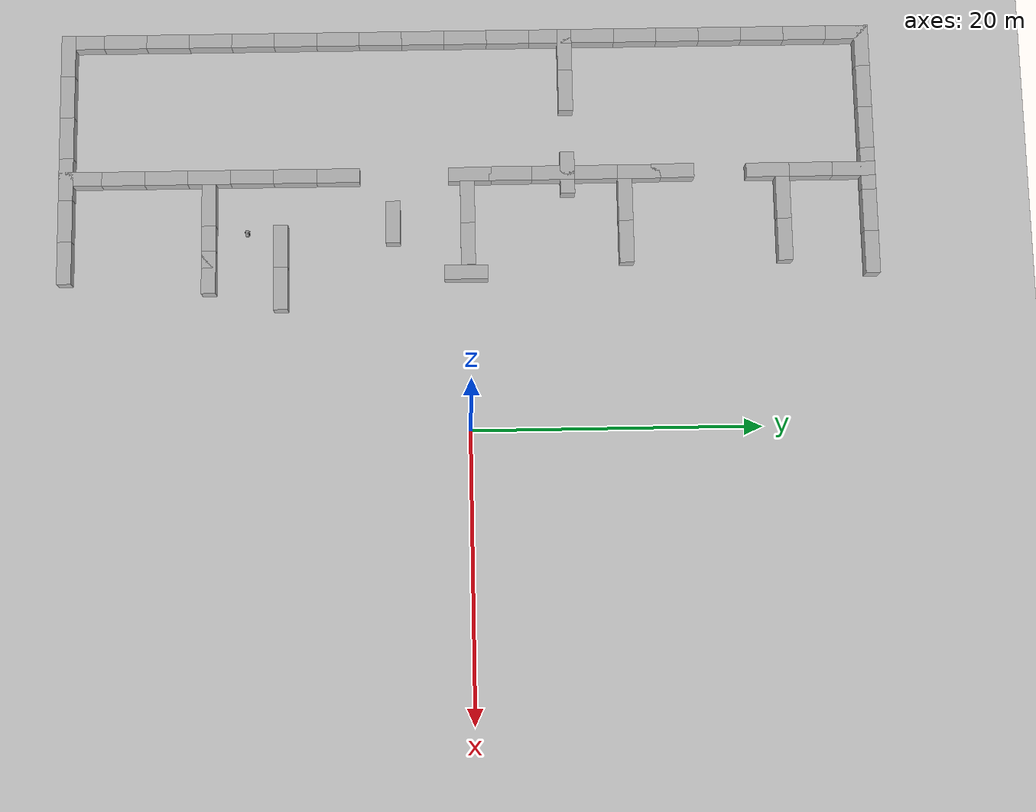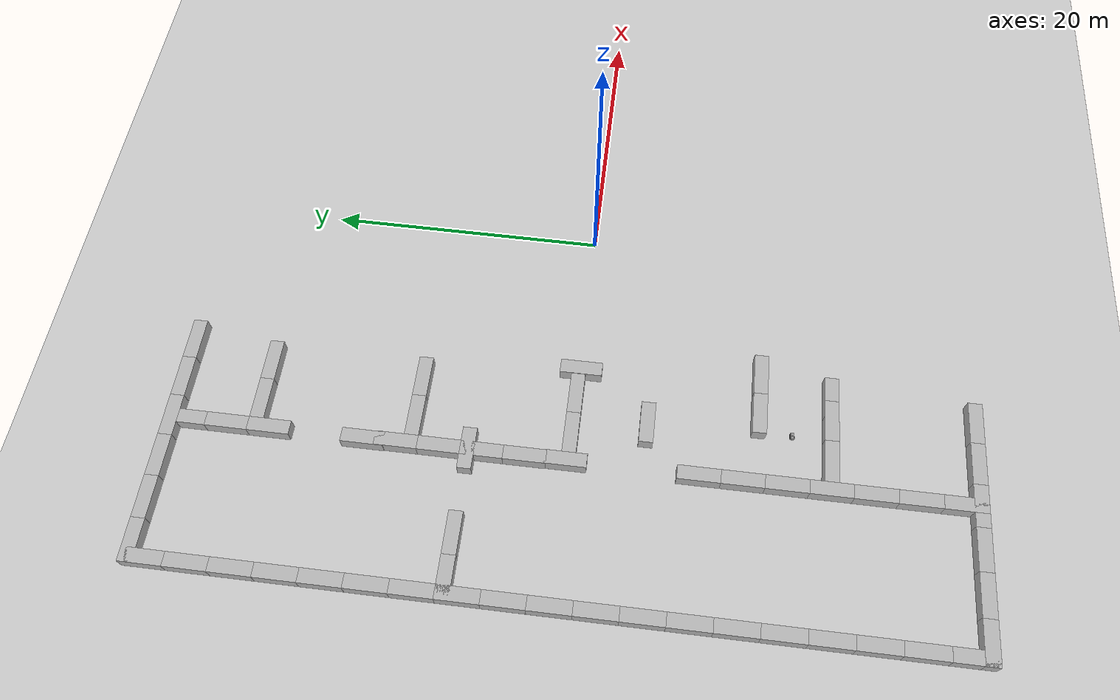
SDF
<sdf version="1.6">
 <world name="default">
  <model name="ground_plane">
   <static>1</static>
   <link name="link">
    <collision name="collision">
     <geometry><plane><normal>0 0 1</normal><size>100 100</size></plane></geometry>
     <surface>
      <contact><collide_bitmask>65535</collide_bitmask></contact>
      <friction><ode><mu>100</mu><mu2>50</mu2></ode></friction>
     </surface>
    </collision>
    <visual name="visual">
     <cast_shadows>0</cast_shadows>
     <geometry><plane><normal>0 0 1</normal><size>100 100</size></plane></geometry>
     <material>
      <script><uri>file://media/materials/scripts/gazebo.material</uri><name>Gazebo/Grey</name></script>
     </material>
    </visual>
   </link>
  </model>
  <model name="wall0">
   <static>1</static>
   <link name="chassis">
    <pose>0 0 1.5 0 -0 0</pose>
    <collision name="collision"><geometry><box><size>3 1 3</size></box></geometry></collision>
    <visual name="visual">
     <geometry><mesh><uri>model://brick_box_3x1x3/meshes/simple_box.dae</uri><scale>3 1 3</scale></mesh></geometry>
     <material>
      <script>
       <uri>model://brick_box_3x1x3/materials/scripts</uri>
       <uri>model://brick_box_3x1x3/materials/textures</uri>
       <name>BrickBox/Diffuse</name>
      </script>
     </material>
    </visual>
   </link>
   <pose>-27 -28 -2 0 -0 0</pose>
  </model>
  <model name="wall1">
   <static>1</static>
   <link name="chassis">
    <pose>0 0 1.5 0 -0 0</pose>
    <collision name="collision"><geometry><box><size>3 1 3</size></box></geometry></collision>
    <visual name="visual">
     <geometry><mesh><uri>model://brick_box_3x1x3/meshes/simple_box.dae</uri><scale>3 1 3</scale></mesh></geometry>
     <material>
      <script>
       <uri>model://brick_box_3x1x3/materials/scripts</uri>
       <uri>model://brick_box_3x1x3/materials/textures</uri>
       <name>BrickBox/Diffuse</name>
      </script>
     </material>
    </visual>
   </link>
   <pose>-27 28 -2 0 -0 0</pose>
  </model>
  <model name="wall2">
   <static>1</static>
   <link name="chassis">
    <pose>0 0 1.5 0 -0 0</pose>
    <collision name="collision"><geometry><box><size>3 1 3</size></box></geometry></collision>
    <visual name="visual">
     <geometry><mesh><uri>model://brick_box_3x1x3/meshes/simple_box.dae</uri><scale>3 1 3</scale></mesh></geometry>
     <material>
      <script>
       <uri>model://brick_box_3x1x3/materials/scripts</uri>
       <uri>model://brick_box_3x1x3/materials/textures</uri>
       <name>BrickBox/Diffuse</name>
      </script>
     </material>
    </visual>
   </link>
   <pose>-28 -27 -2 0 -0 1.5708</pose>
  </model>
  <model name="wall4">
   <static>1</static>
   <link name="chassis">
    <pose>0 0 1.5 0 -0 0</pose>
    <collision name="collision"><geometry><box><size>3 1 3</size></box></geometry></collision>
    <visual name="visual">
     <geometry><mesh><uri>model://brick_box_3x1x3/meshes/simple_box.dae</uri><scale>3 1 3</scale></mesh></geometry>
     <material>
      <script>
       <uri>model://brick_box_3x1x3/materials/scripts</uri>
       <uri>model://brick_box_3x1x3/materials/textures</uri>
       <name>BrickBox/Diffuse</name>
      </script>
     </material>
    </visual>
   </link>
   <pose>-24 -28 -2 0 -0 0</pose>
  </model>
  <model name="wall5">
   <static>1</static>
   <link name="chassis">
    <pose>0 0 1.5 0 -0 0</pose>
    <collision name="collision"><geometry><box><size>3 1 3</size></box></geometry></collision>
    <visual name="visual">
     <geometry><mesh><uri>model://brick_box_3x1x3/meshes/simple_box.dae</uri><scale>3 1 3</scale></mesh></geometry>
     <material>
      <script>
       <uri>model://brick_box_3x1x3/materials/scripts</uri>
       <uri>model://brick_box_3x1x3/materials/textures</uri>
       <name>BrickBox/Diffuse</name>
      </script>
     </material>
    </visual>
   </link>
   <pose>-24 28 -2 0 -0 0</pose>
  </model>
  <model name="wall6">
   <static>1</static>
   <link name="chassis">
    <pose>0 0 1.5 0 -0 0</pose>
    <collision name="collision"><geometry><box><size>3 1 3</size></box></geometry></collision>
    <visual name="visual">
     <geometry><mesh><uri>model://brick_box_3x1x3/meshes/simple_box.dae</uri><scale>3 1 3</scale></mesh></geometry>
     <material>
      <script>
       <uri>model://brick_box_3x1x3/materials/scripts</uri>
       <uri>model://brick_box_3x1x3/materials/textures</uri>
       <name>BrickBox/Diffuse</name>
      </script>
     </material>
    </visual>
   </link>
   <pose>-28 -24 -2 0 -0 1.5708</pose>
  </model>
  <model name="wall8">
   <static>1</static>
   <link name="chassis">
    <pose>0 0 1.5 0 -0 0</pose>
    <collision name="collision"><geometry><box><size>3 1 3</size></box></geometry></collision>
    <visual name="visual">
     <geometry><mesh><uri>model://brick_box_3x1x3/meshes/simple_box.dae</uri><scale>3 1 3</scale></mesh></geometry>
     <material>
      <script>
       <uri>model://brick_box_3x1x3/materials/scripts</uri>
       <uri>model://brick_box_3x1x3/materials/textures</uri>
       <name>BrickBox/Diffuse</name>
      </script>
     </material>
    </visual>
   </link>
   <pose>-21 -28 -2 0 -0 0</pose>
  </model>
  <model name="wall9">
   <static>1</static>
   <link name="chassis">
    <pose>0 0 1.5 0 -0 0</pose>
    <collision name="collision"><geometry><box><size>3 1 3</size></box></geometry></collision>
    <visual name="visual">
     <geometry><mesh><uri>model://brick_box_3x1x3/meshes/simple_box.dae</uri><scale>3 1 3</scale></mesh></geometry>
     <material>
      <script>
       <uri>model://brick_box_3x1x3/materials/scripts</uri>
       <uri>model://brick_box_3x1x3/materials/textures</uri>
       <name>BrickBox/Diffuse</name>
      </script>
     </material>
    </visual>
   </link>
   <pose>-21 28 -2 0 -0 0</pose>
  </model>
  <model name="wall10">
   <static>1</static>
   <link name="chassis">
    <pose>0 0 1.5 0 -0 0</pose>
    <collision name="collision"><geometry><box><size>3 1 3</size></box></geometry></collision>
    <visual name="visual">
     <geometry><mesh><uri>model://brick_box_3x1x3/meshes/simple_box.dae</uri><scale>3 1 3</scale></mesh></geometry>
     <material>
      <script>
       <uri>model://brick_box_3x1x3/materials/scripts</uri>
       <uri>model://brick_box_3x1x3/materials/textures</uri>
       <name>BrickBox/Diffuse</name>
      </script>
     </material>
    </visual>
   </link>
   <pose>-28 -21 -2 0 -0 1.5708</pose>
  </model>
  <model name="wall12">
   <static>1</static>
   <link name="chassis">
    <pose>0 0 1.5 0 -0 0</pose>
    <collision name="collision"><geometry><box><size>3 1 3</size></box></geometry></collision>
    <visual name="visual">
     <geometry><mesh><uri>model://brick_box_3x1x3/meshes/simple_box.dae</uri><scale>3 1 3</scale></mesh></geometry>
     <material>
      <script>
       <uri>model://brick_box_3x1x3/materials/scripts</uri>
       <uri>model://brick_box_3x1x3/materials/textures</uri>
       <name>BrickBox/Diffuse</name>
      </script>
     </material>
    </visual>
   </link>
   <pose>-18 -28 -2 0 -0 0</pose>
  </model>
  <model name="wall13">
   <static>1</static>
   <link name="chassis">
    <pose>0 0 1.5 0 -0 0</pose>
    <collision name="collision"><geometry><box><size>3 1 3</size></box></geometry></collision>
    <visual name="visual">
     <geometry><mesh><uri>model://brick_box_3x1x3/meshes/simple_box.dae</uri><scale>3 1 3</scale></mesh></geometry>
     <material>
      <script>
       <uri>model://brick_box_3x1x3/materials/scripts</uri>
       <uri>model://brick_box_3x1x3/materials/textures</uri>
       <name>BrickBox/Diffuse</name>
      </script>
     </material>
    </visual>
   </link>
   <pose>-18 28 -2 0 -0 0</pose>
  </model>
  <model name="wall14">
   <static>1</static>
   <link name="chassis">
    <pose>0 0 1.5 0 -0 0</pose>
    <collision name="collision"><geometry><box><size>3 1 3</size></box></geometry></collision>
    <visual name="visual">
     <geometry><mesh><uri>model://brick_box_3x1x3/meshes/simple_box.dae</uri><scale>3 1 3</scale></mesh></geometry>
     <material>
      <script>
       <uri>model://brick_box_3x1x3/materials/scripts</uri>
       <uri>model://brick_box_3x1x3/materials/textures</uri>
       <name>BrickBox/Diffuse</name>
      </script>
     </material>
    </visual>
   </link>
   <pose>-28 -18 -2 0 -0 1.5708</pose>
  </model>
  <model name="wall16">
   <static>1</static>
   <link name="chassis">
    <pose>0 0 1.5 0 -0 0</pose>
    <collision name="collision"><geometry><box><size>3 1 3</size></box></geometry></collision>
    <visual name="visual">
     <geometry><mesh><uri>model://brick_box_3x1x3/meshes/simple_box.dae</uri><scale>3 1 3</scale></mesh></geometry>
     <material>
      <script>
       <uri>model://brick_box_3x1x3/materials/scripts</uri>
       <uri>model://brick_box_3x1x3/materials/textures</uri>
       <name>BrickBox/Diffuse</name>
      </script>
     </material>
    </visual>
   </link>
   <pose>-15 -28 -2 0 -0 0</pose>
  </model>
  <model name="wall17">
   <static>1</static>
   <link name="chassis">
    <pose>0 0 1.5 0 -0 0</pose>
    <collision name="collision"><geometry><box><size>3 1 3</size></box></geometry></collision>
    <visual name="visual">
     <geometry><mesh><uri>model://brick_box_3x1x3/meshes/simple_box.dae</uri><scale>3 1 3</scale></mesh></geometry>
     <material>
      <script>
       <uri>model://brick_box_3x1x3/materials/scripts</uri>
       <uri>model://brick_box_3x1x3/materials/textures</uri>
       <name>BrickBox/Diffuse</name>
      </script>
     </material>
    </visual>
   </link>
   <pose>-15 28 -2 0 -0 0</pose>
  </model>
  <model name="wall18">
   <static>1</static>
   <link name="chassis">
    <pose>0 0 1.5 0 -0 0</pose>
    <collision name="collision"><geometry><box><size>3 1 3</size></box></geometry></collision>
    <visual name="visual">
     <geometry><mesh><uri>model://brick_box_3x1x3/meshes/simple_box.dae</uri><scale>3 1 3</scale></mesh></geometry>
     <material>
      <script>
       <uri>model://brick_box_3x1x3/materials/scripts</uri>
       <uri>model://brick_box_3x1x3/materials/textures</uri>
       <name>BrickBox/Diffuse</name>
      </script>
     </material>
    </visual>
   </link>
   <pose>-28 -15 -2 0 -0 1.5708</pose>
  </model>
  <model name="wall20">
   <static>1</static>
   <link name="chassis">
    <pose>0 0 1.5 0 -0 0</pose>
    <collision name="collision"><geometry><box><size>3 1 3</size></box></geometry></collision>
    <visual name="visual">
     <geometry><mesh><uri>model://brick_box_3x1x3/meshes/simple_box.dae</uri><scale>3 1 3</scale></mesh></geometry>
     <material>
      <script>
       <uri>model://brick_box_3x1x3/materials/scripts</uri>
       <uri>model://brick_box_3x1x3/materials/textures</uri>
       <name>BrickBox/Diffuse</name>
      </script>
     </material>
    </visual>
   </link>
   <pose>-12 -28 -2 0 -0 0</pose>
  </model>
  <model name="wall21">
   <static>1</static>
   <link name="chassis">
    <pose>0 0 1.5 0 -0 0</pose>
    <collision name="collision"><geometry><box><size>3 1 3</size></box></geometry></collision>
    <visual name="visual">
     <geometry><mesh><uri>model://brick_box_3x1x3/meshes/simple_box.dae</uri><scale>3 1 3</scale></mesh></geometry>
     <material>
      <script>
       <uri>model://brick_box_3x1x3/materials/scripts</uri>
       <uri>model://brick_box_3x1x3/materials/textures</uri>
       <name>BrickBox/Diffuse</name>
      </script>
     </material>
    </visual>
   </link>
   <pose>-12 28 -2 0 -0 0</pose>
  </model>
  <model name="wall22">
   <static>1</static>
   <link name="chassis">
    <pose>0 0 1.5 0 -0 0</pose>
    <collision name="collision"><geometry><box><size>3 1 3</size></box></geometry></collision>
    <visual name="visual">
     <geometry><mesh><uri>model://brick_box_3x1x3/meshes/simple_box.dae</uri><scale>3 1 3</scale></mesh></geometry>
     <material>
      <script>
       <uri>model://brick_box_3x1x3/materials/scripts</uri>
       <uri>model://brick_box_3x1x3/materials/textures</uri>
       <name>BrickBox/Diffuse</name>
      </script>
     </material>
    </visual>
   </link>
   <pose>-28 -12 -2 0 -0 1.5708</pose>
  </model>
  <model name="wall26">
   <static>1</static>
   <link name="chassis">
    <pose>0 0 1.5 0 -0 0</pose>
    <collision name="collision"><geometry><box><size>3 1 3</size></box></geometry></collision>
    <visual name="visual">
     <geometry><mesh><uri>model://brick_box_3x1x3/meshes/simple_box.dae</uri><scale>3 1 3</scale></mesh></geometry>
     <material>
      <script>
       <uri>model://brick_box_3x1x3/materials/scripts</uri>
       <uri>model://brick_box_3x1x3/materials/textures</uri>
       <name>BrickBox/Diffuse</name>
      </script>
     </material>
    </visual>
   </link>
   <pose>-28 -9 -2 0 -0 1.5708</pose>
  </model>
  <model name="wall30">
   <static>1</static>
   <link name="chassis">
    <pose>0 0 1.5 0 -0 0</pose>
    <collision name="collision"><geometry><box><size>3 1 3</size></box></geometry></collision>
    <visual name="visual">
     <geometry><mesh><uri>model://brick_box_3x1x3/meshes/simple_box.dae</uri><scale>3 1 3</scale></mesh></geometry>
     <material>
      <script>
       <uri>model://brick_box_3x1x3/materials/scripts</uri>
       <uri>model://brick_box_3x1x3/materials/textures</uri>
       <name>BrickBox/Diffuse</name>
      </script>
     </material>
    </visual>
   </link>
   <pose>-28 -6 -2 0 -0 1.5708</pose>
  </model>
  <model name="wall34">
   <static>1</static>
   <link name="chassis">
    <pose>0 0 1.5 0 -0 0</pose>
    <collision name="collision"><geometry><box><size>3 1 3</size></box></geometry></collision>
    <visual name="visual">
     <geometry><mesh><uri>model://brick_box_3x1x3/meshes/simple_box.dae</uri><scale>3 1 3</scale></mesh></geometry>
     <material>
      <script>
       <uri>model://brick_box_3x1x3/materials/scripts</uri>
       <uri>model://brick_box_3x1x3/materials/textures</uri>
       <name>BrickBox/Diffuse</name>
      </script>
     </material>
    </visual>
   </link>
   <pose>-28 -3 -2 0 -0 1.5708</pose>
  </model>
  <model name="wall38">
   <static>1</static>
   <link name="chassis">
    <pose>0 0 1.5 0 -0 0</pose>
    <collision name="collision"><geometry><box><size>3 1 3</size></box></geometry></collision>
    <visual name="visual">
     <geometry><mesh><uri>model://brick_box_3x1x3/meshes/simple_box.dae</uri><scale>3 1 3</scale></mesh></geometry>
     <material>
      <script>
       <uri>model://brick_box_3x1x3/materials/scripts</uri>
       <uri>model://brick_box_3x1x3/materials/textures</uri>
       <name>BrickBox/Diffuse</name>
      </script>
     </material>
    </visual>
   </link>
   <pose>-28 0 -2 0 -0 1.5708</pose>
  </model>
  <model name="wall42">
   <static>1</static>
   <link name="chassis">
    <pose>0 0 1.5 0 -0 0</pose>
    <collision name="collision"><geometry><box><size>3 1 3</size></box></geometry></collision>
    <visual name="visual">
     <geometry><mesh><uri>model://brick_box_3x1x3/meshes/simple_box.dae</uri><scale>3 1 3</scale></mesh></geometry>
     <material>
      <script>
       <uri>model://brick_box_3x1x3/materials/scripts</uri>
       <uri>model://brick_box_3x1x3/materials/textures</uri>
       <name>BrickBox/Diffuse</name>
      </script>
     </material>
    </visual>
   </link>
   <pose>-28 3 -2 0 -0 1.5708</pose>
  </model>
  <model name="wall46">
   <static>1</static>
   <link name="chassis">
    <pose>0 0 1.5 0 -0 0</pose>
    <collision name="collision"><geometry><box><size>3 1 3</size></box></geometry></collision>
    <visual name="visual">
     <geometry><mesh><uri>model://brick_box_3x1x3/meshes/simple_box.dae</uri><scale>3 1 3</scale></mesh></geometry>
     <material>
      <script>
       <uri>model://brick_box_3x1x3/materials/scripts</uri>
       <uri>model://brick_box_3x1x3/materials/textures</uri>
       <name>BrickBox/Diffuse</name>
      </script>
     </material>
    </visual>
   </link>
   <pose>-28 6 -2 0 -0 1.5708</pose>
  </model>
  <model name="wall50">
   <static>1</static>
   <link name="chassis">
    <pose>0 0 1.5 0 -0 0</pose>
    <collision name="collision"><geometry><box><size>3 1 3</size></box></geometry></collision>
    <visual name="visual">
     <geometry><mesh><uri>model://brick_box_3x1x3/meshes/simple_box.dae</uri><scale>3 1 3</scale></mesh></geometry>
     <material>
      <script>
       <uri>model://brick_box_3x1x3/materials/scripts</uri>
       <uri>model://brick_box_3x1x3/materials/textures</uri>
       <name>BrickBox/Diffuse</name>
      </script>
     </material>
    </visual>
   </link>
   <pose>-28 9 -2 0 -0 1.5708</pose>
  </model>
  <model name="wall54">
   <static>1</static>
   <link name="chassis">
    <pose>0 0 1.5 0 -0 0</pose>
    <collision name="collision"><geometry><box><size>3 1 3</size></box></geometry></collision>
    <visual name="visual">
     <geometry><mesh><uri>model://brick_box_3x1x3/meshes/simple_box.dae</uri><scale>3 1 3</scale></mesh></geometry>
     <material>
      <script>
       <uri>model://brick_box_3x1x3/materials/scripts</uri>
       <uri>model://brick_box_3x1x3/materials/textures</uri>
       <name>BrickBox/Diffuse</name>
      </script>
     </material>
    </visual>
   </link>
   <pose>-28 12 -2 0 -0 1.5708</pose>
  </model>
  <model name="wall58">
   <static>1</static>
   <link name="chassis">
    <pose>0 0 1.5 0 -0 0</pose>
    <collision name="collision"><geometry><box><size>3 1 3</size></box></geometry></collision>
    <visual name="visual">
     <geometry><mesh><uri>model://brick_box_3x1x3/meshes/simple_box.dae</uri><scale>3 1 3</scale></mesh></geometry>
     <material>
      <script>
       <uri>model://brick_box_3x1x3/materials/scripts</uri>
       <uri>model://brick_box_3x1x3/materials/textures</uri>
       <name>BrickBox/Diffuse</name>
      </script>
     </material>
    </visual>
   </link>
   <pose>-28 15 -2 0 -0 1.5708</pose>
  </model>
  <model name="wall62">
   <static>1</static>
   <link name="chassis">
    <pose>0 0 1.5 0 -0 0</pose>
    <collision name="collision"><geometry><box><size>3 1 3</size></box></geometry></collision>
    <visual name="visual">
     <geometry><mesh><uri>model://brick_box_3x1x3/meshes/simple_box.dae</uri><scale>3 1 3</scale></mesh></geometry>
     <material>
      <script>
       <uri>model://brick_box_3x1x3/materials/scripts</uri>
       <uri>model://brick_box_3x1x3/materials/textures</uri>
       <name>BrickBox/Diffuse</name>
      </script>
     </material>
    </visual>
   </link>
   <pose>-28 18 -2 0 -0 1.5708</pose>
  </model>
  <model name="wall66">
   <static>1</static>
   <link name="chassis">
    <pose>0 0 1.5 0 -0 0</pose>
    <collision name="collision"><geometry><box><size>3 1 3</size></box></geometry></collision>
    <visual name="visual">
     <geometry><mesh><uri>model://brick_box_3x1x3/meshes/simple_box.dae</uri><scale>3 1 3</scale></mesh></geometry>
     <material>
      <script>
       <uri>model://brick_box_3x1x3/materials/scripts</uri>
       <uri>model://brick_box_3x1x3/materials/textures</uri>
       <name>BrickBox/Diffuse</name>
      </script>
     </material>
    </visual>
   </link>
   <pose>-28 21 -2 0 -0 1.5708</pose>
  </model>
  <model name="wall70">
   <static>1</static>
   <link name="chassis">
    <pose>0 0 1.5 0 -0 0</pose>
    <collision name="collision"><geometry><box><size>3 1 3</size></box></geometry></collision>
    <visual name="visual">
     <geometry><mesh><uri>model://brick_box_3x1x3/meshes/simple_box.dae</uri><scale>3 1 3</scale></mesh></geometry>
     <material>
      <script>
       <uri>model://brick_box_3x1x3/materials/scripts</uri>
       <uri>model://brick_box_3x1x3/materials/textures</uri>
       <name>BrickBox/Diffuse</name>
      </script>
     </material>
    </visual>
   </link>
   <pose>-28 24 -2 0 -0 1.5708</pose>
  </model>
  <model name="wall74">
   <static>1</static>
   <link name="chassis">
    <pose>0 0 1.5 0 -0 0</pose>
    <collision name="collision"><geometry><box><size>3 1 3</size></box></geometry></collision>
    <visual name="visual">
     <geometry><mesh><uri>model://brick_box_3x1x3/meshes/simple_box.dae</uri><scale>3 1 3</scale></mesh></geometry>
     <material>
      <script>
       <uri>model://brick_box_3x1x3/materials/scripts</uri>
       <uri>model://brick_box_3x1x3/materials/textures</uri>
       <name>BrickBox/Diffuse</name>
      </script>
     </material>
    </visual>
   </link>
   <pose>-28 27 -2 0 -0 1.5708</pose>
  </model>
  <model name="wall76">
   <static>1</static>
   <link name="chassis">
    <pose>0 0 1.5 0 -0 0</pose>
    <collision name="collision"><geometry><box><size>3 1 3</size></box></geometry></collision>
    <visual name="visual">
     <geometry><mesh><uri>model://brick_box_3x1x3/meshes/simple_box.dae</uri><scale>3 1 3</scale></mesh></geometry>
     <material>
      <script>
       <uri>model://brick_box_3x1x3/materials/scripts</uri>
       <uri>model://brick_box_3x1x3/materials/textures</uri>
       <name>BrickBox/Diffuse</name>
      </script>
     </material>
    </visual>
   </link>
   <pose>-18 -27 -2 0 -0 1.5708</pose>
  </model>
  <model name="wall77">
   <static>1</static>
   <link name="chassis">
    <pose>0 0 1.5 0 -0 0</pose>
    <collision name="collision"><geometry><box><size>3 1 3</size></box></geometry></collision>
    <visual name="visual">
     <geometry><mesh><uri>model://brick_box_3x1x3/meshes/simple_box.dae</uri><scale>3 1 3</scale></mesh></geometry>
     <material>
      <script>
       <uri>model://brick_box_3x1x3/materials/scripts</uri>
       <uri>model://brick_box_3x1x3/materials/textures</uri>
       <name>BrickBox/Diffuse</name>
      </script>
     </material>
    </visual>
   </link>
   <pose>-18 -24 -2 0 -0 1.5708</pose>
  </model>
  <model name="wall78">
   <static>1</static>
   <link name="chassis">
    <pose>0 0 1.5 0 -0 0</pose>
    <collision name="collision"><geometry><box><size>3 1 3</size></box></geometry></collision>
    <visual name="visual">
     <geometry><mesh><uri>model://brick_box_3x1x3/meshes/simple_box.dae</uri><scale>3 1 3</scale></mesh></geometry>
     <material>
      <script>
       <uri>model://brick_box_3x1x3/materials/scripts</uri>
       <uri>model://brick_box_3x1x3/materials/textures</uri>
       <name>BrickBox/Diffuse</name>
      </script>
     </material>
    </visual>
   </link>
   <pose>-18 -21 -2 0 -0 1.5708</pose>
  </model>
  <model name="wall79">
   <static>1</static>
   <link name="chassis">
    <pose>0 0 1.5 0 -0 0</pose>
    <collision name="collision"><geometry><box><size>3 1 3</size></box></geometry></collision>
    <visual name="visual">
     <geometry><mesh><uri>model://brick_box_3x1x3/meshes/simple_box.dae</uri><scale>3 1 3</scale></mesh></geometry>
     <material>
      <script>
       <uri>model://brick_box_3x1x3/materials/scripts</uri>
       <uri>model://brick_box_3x1x3/materials/textures</uri>
       <name>BrickBox/Diffuse</name>
      </script>
     </material>
    </visual>
   </link>
   <pose>-18 -18 -2 0 -0 1.5708</pose>
  </model>
  <model name="wall80">
   <static>1</static>
   <link name="chassis">
    <pose>0 0 1.5 0 -0 0</pose>
    <collision name="collision"><geometry><box><size>3 1 3</size></box></geometry></collision>
    <visual name="visual">
     <geometry><mesh><uri>model://brick_box_3x1x3/meshes/simple_box.dae</uri><scale>3 1 3</scale></mesh></geometry>
     <material>
      <script>
       <uri>model://brick_box_3x1x3/materials/scripts</uri>
       <uri>model://brick_box_3x1x3/materials/textures</uri>
       <name>BrickBox/Diffuse</name>
      </script>
     </material>
    </visual>
   </link>
   <pose>-18 -15 -2 0 -0 1.5708</pose>
  </model>
  <model name="wall81">
   <static>1</static>
   <link name="chassis">
    <pose>0 0 1.5 0 -0 0</pose>
    <collision name="collision"><geometry><box><size>3 1 3</size></box></geometry></collision>
    <visual name="visual">
     <geometry><mesh><uri>model://brick_box_3x1x3/meshes/simple_box.dae</uri><scale>3 1 3</scale></mesh></geometry>
     <material>
      <script>
       <uri>model://brick_box_3x1x3/materials/scripts</uri>
       <uri>model://brick_box_3x1x3/materials/textures</uri>
       <name>BrickBox/Diffuse</name>
      </script>
     </material>
    </visual>
   </link>
   <pose>-18 -12 -2 0 -0 1.5708</pose>
  </model>
  <model name="wall82">
   <static>1</static>
   <link name="chassis">
    <pose>0 0 1.5 0 -0 0</pose>
    <collision name="collision"><geometry><box><size>3 1 3</size></box></geometry></collision>
    <visual name="visual">
     <geometry><mesh><uri>model://brick_box_3x1x3/meshes/simple_box.dae</uri><scale>3 1 3</scale></mesh></geometry>
     <material>
      <script>
       <uri>model://brick_box_3x1x3/materials/scripts</uri>
       <uri>model://brick_box_3x1x3/materials/textures</uri>
       <name>BrickBox/Diffuse</name>
      </script>
     </material>
    </visual>
   </link>
   <pose>-18 -9 -2 0 -0 1.5708</pose>
  </model>
  <model name="wall83">
   <static>1</static>
   <link name="chassis">
    <pose>0 0 1.5 0 -0 0</pose>
    <collision name="collision"><geometry><box><size>3 1 3</size></box></geometry></collision>
    <visual name="visual">
     <geometry><mesh><uri>model://brick_box_3x1x3/meshes/simple_box.dae</uri><scale>3 1 3</scale></mesh></geometry>
     <material>
      <script>
       <uri>model://brick_box_3x1x3/materials/scripts</uri>
       <uri>model://brick_box_3x1x3/materials/textures</uri>
       <name>BrickBox/Diffuse</name>
      </script>
     </material>
    </visual>
   </link>
   <pose>-10.9743 -0.151735 -2 0 -0 1.5708</pose>
  </model>
  <model name="wall84">
   <static>1</static>
   <link name="chassis">
    <pose>0 0 1.5 0 -0 0</pose>
    <collision name="collision"><geometry><box><size>3 1 3</size></box></geometry></collision>
    <visual name="visual">
     <geometry><mesh><uri>model://brick_box_3x1x3/meshes/simple_box.dae</uri><scale>3 1 3</scale></mesh></geometry>
     <material>
      <script>
       <uri>model://brick_box_3x1x3/materials/scripts</uri>
       <uri>model://brick_box_3x1x3/materials/textures</uri>
       <name>BrickBox/Diffuse</name>
      </script>
     </material>
    </visual>
   </link>
   <pose>-17.9735 0.185123 -2 0 -0 1.5708</pose>
  </model>
  <model name="wall85">
   <static>1</static>
   <link name="chassis">
    <pose>0 0 1.5 0 -0 0</pose>
    <collision name="collision"><geometry><box><size>3 1 3</size></box></geometry></collision>
    <visual name="visual">
     <geometry><mesh><uri>model://brick_box_3x1x3/meshes/simple_box.dae</uri><scale>3 1 3</scale></mesh></geometry>
     <material>
      <script>
       <uri>model://brick_box_3x1x3/materials/scripts</uri>
       <uri>model://brick_box_3x1x3/materials/textures</uri>
       <name>BrickBox/Diffuse</name>
      </script>
     </material>
    </visual>
   </link>
   <pose>-18 3 -2 0 -0 1.5708</pose>
  </model>
  <model name="wall86">
   <static>1</static>
   <link name="chassis">
    <pose>0 0 1.5 0 -0 0</pose>
    <collision name="collision"><geometry><box><size>3 1 3</size></box></geometry></collision>
    <visual name="visual">
     <geometry><mesh><uri>model://brick_box_3x1x3/meshes/simple_box.dae</uri><scale>3 1 3</scale></mesh></geometry>
     <material>
      <script>
       <uri>model://brick_box_3x1x3/materials/scripts</uri>
       <uri>model://brick_box_3x1x3/materials/textures</uri>
       <name>BrickBox/Diffuse</name>
      </script>
     </material>
    </visual>
   </link>
   <pose>-18 6 -2 0 -0 1.5708</pose>
  </model>
  <model name="wall87">
   <static>1</static>
   <link name="chassis">
    <pose>0 0 1.5 0 -0 0</pose>
    <collision name="collision"><geometry><box><size>3 1 3</size></box></geometry></collision>
    <visual name="visual">
     <geometry><mesh><uri>model://brick_box_3x1x3/meshes/simple_box.dae</uri><scale>3 1 3</scale></mesh></geometry>
     <material>
      <script>
       <uri>model://brick_box_3x1x3/materials/scripts</uri>
       <uri>model://brick_box_3x1x3/materials/textures</uri>
       <name>BrickBox/Diffuse</name>
      </script>
     </material>
    </visual>
   </link>
   <pose>-18 9 -2 0 -0 1.5708</pose>
  </model>
  <model name="wall88">
   <static>1</static>
   <link name="chassis">
    <pose>0 0 1.5 0 -0 0</pose>
    <collision name="collision"><geometry><box><size>3 1 3</size></box></geometry></collision>
    <visual name="visual">
     <geometry><mesh><uri>model://brick_box_3x1x3/meshes/simple_box.dae</uri><scale>3 1 3</scale></mesh></geometry>
     <material>
      <script>
       <uri>model://brick_box_3x1x3/materials/scripts</uri>
       <uri>model://brick_box_3x1x3/materials/textures</uri>
       <name>BrickBox/Diffuse</name>
      </script>
     </material>
    </visual>
   </link>
   <pose>-18 12 -2 0 -0 1.5708</pose>
  </model>
  <model name="wall89">
   <static>1</static>
   <link name="chassis">
    <pose>0 0 1.5 0 -0 0</pose>
    <collision name="collision"><geometry><box><size>3 1 3</size></box></geometry></collision>
    <visual name="visual">
     <geometry><mesh><uri>model://brick_box_3x1x3/meshes/simple_box.dae</uri><scale>3 1 3</scale></mesh></geometry>
     <material>
      <script>
       <uri>model://brick_box_3x1x3/materials/scripts</uri>
       <uri>model://brick_box_3x1x3/materials/textures</uri>
       <name>BrickBox/Diffuse</name>
      </script>
     </material>
    </visual>
   </link>
   <pose>-18 21 -2 0 -0 1.5708</pose>
  </model>
  <model name="wall90">
   <static>1</static>
   <link name="chassis">
    <pose>0 0 1.5 0 -0 0</pose>
    <collision name="collision"><geometry><box><size>3 1 3</size></box></geometry></collision>
    <visual name="visual">
     <geometry><mesh><uri>model://brick_box_3x1x3/meshes/simple_box.dae</uri><scale>3 1 3</scale></mesh></geometry>
     <material>
      <script>
       <uri>model://brick_box_3x1x3/materials/scripts</uri>
       <uri>model://brick_box_3x1x3/materials/textures</uri>
       <name>BrickBox/Diffuse</name>
      </script>
     </material>
    </visual>
   </link>
   <pose>-18 24 -2 0 -0 1.5708</pose>
  </model>
  <model name="wall91">
   <static>1</static>
   <link name="chassis">
    <pose>0 0 1.5 0 -0 0</pose>
    <collision name="collision"><geometry><box><size>3 1 3</size></box></geometry></collision>
    <visual name="visual">
     <geometry><mesh><uri>model://brick_box_3x1x3/meshes/simple_box.dae</uri><scale>3 1 3</scale></mesh></geometry>
     <material>
      <script>
       <uri>model://brick_box_3x1x3/materials/scripts</uri>
       <uri>model://brick_box_3x1x3/materials/textures</uri>
       <name>BrickBox/Diffuse</name>
      </script>
     </material>
    </visual>
   </link>
   <pose>-18 27 -2 0 -0 1.5708</pose>
  </model>
  <model name="wall92">
   <static>1</static>
   <link name="chassis">
    <pose>0 0 1.5 0 -0 0</pose>
    <collision name="collision"><geometry><box><size>3 1 3</size></box></geometry></collision>
    <visual name="visual">
     <geometry><mesh><uri>model://brick_box_3x1x3/meshes/simple_box.dae</uri><scale>3 1 3</scale></mesh></geometry>
     <material>
      <script>
       <uri>model://brick_box_3x1x3/materials/scripts</uri>
       <uri>model://brick_box_3x1x3/materials/textures</uri>
       <name>BrickBox/Diffuse</name>
      </script>
     </material>
    </visual>
   </link>
   <pose>-27 7 -2 0 -0 0</pose>
  </model>
  <model name="wall93">
   <static>1</static>
   <link name="chassis">
    <pose>0 0 1.5 0 -0 0</pose>
    <collision name="collision"><geometry><box><size>3 1 3</size></box></geometry></collision>
    <visual name="visual">
     <geometry><mesh><uri>model://brick_box_3x1x3/meshes/simple_box.dae</uri><scale>3 1 3</scale></mesh></geometry>
     <material>
      <script>
       <uri>model://brick_box_3x1x3/materials/scripts</uri>
       <uri>model://brick_box_3x1x3/materials/textures</uri>
       <name>BrickBox/Diffuse</name>
      </script>
     </material>
    </visual>
   </link>
   <pose>-24 7 -2 0 -0 0</pose>
  </model>
  <model name="wall94">
   <static>1</static>
   <link name="chassis">
    <pose>0 0 1.5 0 -0 0</pose>
    <collision name="collision"><geometry><box><size>3 1 3</size></box></geometry></collision>
    <visual name="visual">
     <geometry><mesh><uri>model://brick_box_3x1x3/meshes/simple_box.dae</uri><scale>3 1 3</scale></mesh></geometry>
     <material>
      <script>
       <uri>model://brick_box_3x1x3/materials/scripts</uri>
       <uri>model://brick_box_3x1x3/materials/textures</uri>
       <name>BrickBox/Diffuse</name>
      </script>
     </material>
    </visual>
   </link>
   <pose>-18 7 -2 0 -0 0</pose>
  </model>
  <model name="wall95">
   <static>1</static>
   <link name="chassis">
    <pose>0 0 1.5 0 -0 0</pose>
    <collision name="collision"><geometry><box><size>3 1 3</size></box></geometry></collision>
    <visual name="visual">
     <geometry><mesh><uri>model://brick_box_3x1x3/meshes/simple_box.dae</uri><scale>3 1 3</scale></mesh></geometry>
     <material>
      <script>
       <uri>model://brick_box_3x1x3/materials/scripts</uri>
       <uri>model://brick_box_3x1x3/materials/textures</uri>
       <name>BrickBox/Diffuse</name>
      </script>
     </material>
    </visual>
   </link>
   <pose>-11.2097 -17.9954 -2 0 -0 0</pose>
  </model>
  <model name="wall96">
   <static>1</static>
   <link name="chassis">
    <pose>0 0 1.5 0 -0 0</pose>
    <collision name="collision"><geometry><box><size>3 1 3</size></box></geometry></collision>
    <visual name="visual">
     <geometry><mesh><uri>model://brick_box_3x1x3/meshes/simple_box.dae</uri><scale>3 1 3</scale></mesh></geometry>
     <material>
      <script>
       <uri>model://brick_box_3x1x3/materials/scripts</uri>
       <uri>model://brick_box_3x1x3/materials/textures</uri>
       <name>BrickBox/Diffuse</name>
      </script>
     </material>
    </visual>
   </link>
   <pose>-13 -13 -2 0 -0 0</pose>
  </model>
  <model name="wall97">
   <static>1</static>
   <link name="chassis">
    <pose>0 0 1.5 0 -0 0</pose>
    <collision name="collision"><geometry><box><size>3 1 3</size></box></geometry></collision>
    <visual name="visual">
     <geometry><mesh><uri>model://brick_box_3x1x3/meshes/simple_box.dae</uri><scale>3 1 3</scale></mesh></geometry>
     <material>
      <script>
       <uri>model://brick_box_3x1x3/materials/scripts</uri>
       <uri>model://brick_box_3x1x3/materials/textures</uri>
       <name>BrickBox/Diffuse</name>
      </script>
     </material>
    </visual>
   </link>
   <pose>-10 -13 -2 0 -0 0</pose>
  </model>
  <model name="wall113">
   <static>1</static>
   <link name="chassis">
    <pose>0 0 1.5 0 -0 0</pose>
    <collision name="collision"><geometry><box><size>3 1 3</size></box></geometry></collision>
    <visual name="visual">
     <geometry><mesh><uri>model://brick_box_3x1x3/meshes/simple_box.dae</uri><scale>3 1 3</scale></mesh></geometry>
     <material>
      <script>
       <uri>model://brick_box_3x1x3/materials/scripts</uri>
       <uri>model://brick_box_3x1x3/materials/textures</uri>
       <name>BrickBox/Diffuse</name>
      </script>
     </material>
    </visual>
   </link>
   <pose>-16 -18 -2 0 -0 0</pose>
  </model>
  <model name="wall114">
   <static>1</static>
   <link name="chassis">
    <pose>0 0 1.5 0 -0 0</pose>
    <collision name="collision"><geometry><box><size>3 1 3</size></box></geometry></collision>
    <visual name="visual">
     <geometry><mesh><uri>model://brick_box_3x1x3/meshes/simple_box.dae</uri><scale>3 1 3</scale></mesh></geometry>
     <material>
      <script>
       <uri>model://brick_box_3x1x3/materials/scripts</uri>
       <uri>model://brick_box_3x1x3/materials/textures</uri>
       <name>BrickBox/Diffuse</name>
      </script>
     </material>
    </visual>
   </link>
   <pose>-13 -18 -2 0 -0 0</pose>
  </model>
  <model name="wall142">
   <static>1</static>
   <link name="chassis">
    <pose>0 0 1.5 0 -0 0</pose>
    <collision name="collision"><geometry><box><size>3 1 3</size></box></geometry></collision>
    <visual name="visual">
     <geometry><mesh><uri>model://brick_box_3x1x3/meshes/simple_box.dae</uri><scale>3 1 3</scale></mesh></geometry>
     <material>
      <script>
       <uri>model://brick_box_3x1x3/materials/scripts</uri>
       <uri>model://brick_box_3x1x3/materials/textures</uri>
       <name>BrickBox/Diffuse</name>
      </script>
     </material>
    </visual>
   </link>
   <pose>-16 11 -2 0 -0 0</pose>
  </model>
  <model name="wall143">
   <static>1</static>
   <link name="chassis">
    <pose>0 0 1.5 0 -0 0</pose>
    <collision name="collision"><geometry><box><size>3 1 3</size></box></geometry></collision>
    <visual name="visual">
     <geometry><mesh><uri>model://brick_box_3x1x3/meshes/simple_box.dae</uri><scale>3 1 3</scale></mesh></geometry>
     <material>
      <script>
       <uri>model://brick_box_3x1x3/materials/scripts</uri>
       <uri>model://brick_box_3x1x3/materials/textures</uri>
       <name>BrickBox/Diffuse</name>
      </script>
     </material>
    </visual>
   </link>
   <pose>-13 11 -2 0 -0 0</pose>
  </model>
  <model name="wall151">
   <static>1</static>
   <link name="chassis">
    <pose>0 0 1.5 0 -0 0</pose>
    <collision name="collision"><geometry><box><size>3 1 3</size></box></geometry></collision>
    <visual name="visual">
     <geometry><mesh><uri>model://brick_box_3x1x3/meshes/simple_box.dae</uri><scale>3 1 3</scale></mesh></geometry>
     <material>
      <script>
       <uri>model://brick_box_3x1x3/materials/scripts</uri>
       <uri>model://brick_box_3x1x3/materials/textures</uri>
       <name>BrickBox/Diffuse</name>
      </script>
     </material>
    </visual>
   </link>
   <pose>-18.0317 14.3495 -2 0 -0 1.5708</pose>
  </model>
  <model name="wall155">
   <static>1</static>
   <link name="chassis">
    <pose>0 0 1.5 0 -0 0</pose>
    <collision name="collision"><geometry><box><size>3 1 3</size></box></geometry></collision>
    <visual name="visual">
     <geometry><mesh><uri>model://brick_box_3x1x3/meshes/simple_box.dae</uri><scale>3 1 3</scale></mesh></geometry>
     <material>
      <script>
       <uri>model://brick_box_3x1x3/materials/scripts</uri>
       <uri>model://brick_box_3x1x3/materials/textures</uri>
       <name>BrickBox/Diffuse</name>
      </script>
     </material>
    </visual>
   </link>
   <pose>-16 0 -2 0 -0 0</pose>
  </model>
  <model name="wall156">
   <static>1</static>
   <link name="chassis">
    <pose>0 0 1.5 0 -0 0</pose>
    <collision name="collision"><geometry><box><size>3 1 3</size></box></geometry></collision>
    <visual name="visual">
     <geometry><mesh><uri>model://brick_box_3x1x3/meshes/simple_box.dae</uri><scale>3 1 3</scale></mesh></geometry>
     <material>
      <script>
       <uri>model://brick_box_3x1x3/materials/scripts</uri>
       <uri>model://brick_box_3x1x3/materials/textures</uri>
       <name>BrickBox/Diffuse</name>
      </script>
     </material>
    </visual>
   </link>
   <pose>-13 0 -2 0 -0 0</pose>
  </model>
  <model name="wall157">
   <static>1</static>
   <link name="chassis">
    <pose>0 0 1.5 0 -0 0</pose>
    <collision name="collision"><geometry><box><size>3 1 3</size></box></geometry></collision>
    <visual name="visual">
     <geometry><mesh><uri>model://brick_box_3x1x3/meshes/simple_box.dae</uri><scale>3 1 3</scale></mesh></geometry>
     <material>
      <script>
       <uri>model://brick_box_3x1x3/materials/scripts</uri>
       <uri>model://brick_box_3x1x3/materials/textures</uri>
       <name>BrickBox/Diffuse</name>
      </script>
     </material>
    </visual>
   </link>
   <pose>-14.6155 -5.19803 -2 0 -0 0</pose>
  </model>
  <model name="wall174">
   <static>1</static>
   <link name="chassis">
    <pose>0 0 1.5 0 -0 0</pose>
    <collision name="collision"><geometry><box><size>3 1 3</size></box></geometry></collision>
    <visual name="visual">
     <geometry><mesh><uri>model://brick_box_3x1x3/meshes/simple_box.dae</uri><scale>3 1 3</scale></mesh></geometry>
     <material>
      <script>
       <uri>model://brick_box_3x1x3/materials/scripts</uri>
       <uri>model://brick_box_3x1x3/materials/textures</uri>
       <name>BrickBox/Diffuse</name>
      </script>
     </material>
    </visual>
   </link>
   <pose>-16 22 -2 0 -0 0</pose>
  </model>
  <model name="wall175">
   <static>1</static>
   <link name="chassis">
    <pose>0 0 1.5 0 -0 0</pose>
    <collision name="collision"><geometry><box><size>3 1 3</size></box></geometry></collision>
    <visual name="visual">
     <geometry><mesh><uri>model://brick_box_3x1x3/meshes/simple_box.dae</uri><scale>3 1 3</scale></mesh></geometry>
     <material>
      <script>
       <uri>model://brick_box_3x1x3/materials/scripts</uri>
       <uri>model://brick_box_3x1x3/materials/textures</uri>
       <name>BrickBox/Diffuse</name>
      </script>
     </material>
    </visual>
   </link>
   <pose>-13 22 -2 0 -0 0</pose>
  </model>
  <model name="tankbot0">
   <pose>-14.1461 -15.3943 0 -1e-06 5e-06 0.07255</pose>
   <link name="tankbot::chassis">
    <pose>0 0 0.135 0 -0 0</pose>
    <inertial>
     <pose>0.0465 0 0 0 -0 0</pose>
     <mass>2</mass>
     <inertia>
      <ixx>0.0125927</ixx>
      <iyy>0.0408542</iyy>
      <izz>0.0438135</izz>
      <ixy>0</ixy>
      <ixz>0</ixz>
      <iyz>0</iyz>
     </inertia>
    </inertial>
    <collision name="collision"><geometry><box><size>0.465 0.216 0.17</size></box></geometry></collision>
    <visual name="visual">
     <geometry><box><size>0.465 0.216 0.17</size></box></geometry>
     <material>
      <script><uri>file://media/materials/scripts/gazebo.material</uri><name>Gazebo/Grey</name></script>
     </material>
    </visual>
   </link>
   <link name="tankbot::wheel_fl">
    <pose>0.1395 0.142 0.05 -1.5708 -0.087266 0</pose>
    <inertial>
     <mass>0.25</mass>
     <inertia>
      <ixx>0.000189583</ixx>
      <iyy>0.000189583</iyy>
      <izz>0.0003125</izz>
      <ixy>0</ixy>
      <ixz>0</ixz>
      <iyz>0</iyz>
     </inertia>
    </inertial>
    <collision name="collision">
     <geometry><cylinder><radius>0.05</radius><length>0.04</length></cylinder></geometry>
    </collision>
    <visual name="tankbot::wheel_fl">
     <geometry><cylinder><radius>0.05</radius><length>0.04</length></cylinder></geometry>
     <material>
      <script><uri>file://media/materials/scripts/gazebo.material</uri><name>Gazebo/Black</name></script>
     </material>
    </visual>
   </link>
   <joint name="tankbot::wheel_fl_drive" type="revolute">
    <parent>tankbot::chassis</parent>
    <child>tankbot::wheel_fl</child>
    <axis>
     <xyz>0 0 1</xyz>
     <use_parent_model_frame>0</use_parent_model_frame>
     <limit><lower>-1e+16</lower><upper>1e+16</upper></limit>
     <dynamics><spring_reference>0</spring_reference><spring_stiffness>0</spring_stiffness></dynamics>
    </axis>
   </joint>
   <link name="tankbot::chain_l_up">
    <pose>0.0098 0.14 0.1 0 -0 0</pose>
    <gravity>0</gravity>
    <collision name="collision"><geometry><box><size>0.28 0.04 0.01</size></box></geometry></collision>
    <visual name="visual">
     <geometry><box><size>0.28 0.04 0.01</size></box></geometry>
     <material>
      <script><uri>file://media/materials/scripts/gazebo.material</uri><name>Gazebo/Black</name></script>
     </material>
    </visual>
    <inertial>
     <inertia><ixx>1</ixx><ixy>0</ixy><ixz>0</ixz><iyy>1</iyy><iyz>0</iyz><izz>1</izz></inertia>
     <mass>1</mass>
    </inertial>
   </link>
   <link name="tankbot::chain_r_up">
    <pose>0.0098 -0.14 0.1 0 -0 0</pose>
    <gravity>0</gravity>
    <collision name="collision"><geometry><box><size>0.28 0.04 0.01</size></box></geometry></collision>
    <visual name="visual">
     <geometry><box><size>0.28 0.04 0.01</size></box></geometry>
     <material>
      <script><uri>file://media/materials/scripts/gazebo.material</uri><name>Gazebo/Black</name></script>
     </material>
    </visual>
    <inertial>
     <inertia><ixx>1</ixx><ixy>0</ixy><ixz>0</ixz><iyy>1</iyy><iyz>0</iyz><izz>1</izz></inertia>
     <mass>1</mass>
    </inertial>
   </link>
   <joint name="tankbot::chain_up_joint" type="fixed">
    <parent>tankbot::chain_l_up</parent>
    <child>tankbot::chain_r_up</child>
   </joint>
   <joint name="tankbot::chain_up_2_joint" type="fixed">
    <parent>tankbot::chassis</parent>
    <child>tankbot::chain_l_up</child>
   </joint>
   <link name="tankbot::wheel_fr">
    <pose>0.1395 -0.142 0.05 -1.5708 -0.087266 0</pose>
    <inertial>
     <mass>0.25</mass>
     <inertia>
      <ixx>0.000189583</ixx>
      <iyy>0.000189583</iyy>
      <izz>0.0003125</izz>
      <ixy>0</ixy>
      <ixz>0</ixz>
      <iyz>0</iyz>
     </inertia>
    </inertial>
    <collision name="collision">
     <geometry><cylinder><radius>0.05</radius><length>0.04</length></cylinder></geometry>
    </collision>
    <visual name="visual">
     <geometry><cylinder><radius>0.05</radius><length>0.04</length></cylinder></geometry>
     <material>
      <script><uri>file://media/materials/scripts/gazebo.material</uri><name>Gazebo/Black</name></script>
     </material>
    </visual>
   </link>
   <joint name="tankbot::wheel_fr_drive" type="revolute">
    <parent>tankbot::chassis</parent>
    <child>tankbot::wheel_fr</child>
    <axis>
     <xyz>0 0 1</xyz>
     <use_parent_model_frame>0</use_parent_model_frame>
     <limit><lower>-1e+16</lower><upper>1e+16</upper></limit>
     <dynamics><spring_reference>0</spring_reference><spring_stiffness>0</spring_stiffness></dynamics>
    </axis>
   </joint>
   <link name="tankbot::wheel_rl">
    <pose>-0.1395 0.142 0.05 -1.5708 0 0</pose>
    <inertial>
     <mass>0.25</mass>
     <inertia>
      <ixx>0.000189583</ixx>
      <iyy>0.000189583</iyy>
      <izz>0.0003125</izz>
      <ixy>0</ixy>
      <ixz>0</ixz>
      <iyz>0</iyz>
     </inertia>
    </inertial>
    <collision name="collision">
     <geometry><cylinder><radius>0.05</radius><length>0.04</length></cylinder></geometry>
    </collision>
    <visual name="visual">
     <geometry><cylinder><radius>0.05</radius><length>0.04</length></cylinder></geometry>
     <material>
      <script><uri>file://media/materials/scripts/gazebo.material</uri><name>Gazebo/Black</name></script>
     </material>
    </visual>
   </link>
   <joint name="tankbot::wheel_rl_drive" type="revolute">
    <parent>tankbot::chassis</parent>
    <child>tankbot::wheel_rl</child>
    <axis>
     <xyz>0 0 1</xyz>
     <use_parent_model_frame>0</use_parent_model_frame>
     <limit><lower>-1e+16</lower><upper>1e+16</upper></limit>
     <dynamics><spring_reference>0</spring_reference><spring_stiffness>0</spring_stiffness></dynamics>
    </axis>
   </joint>
   <link name="tankbot::wheel_rr">
    <pose>-0.1395 -0.142 0.05 -1.5708 0 0</pose>
    <inertial>
     <mass>0.25</mass>
     <inertia>
      <ixx>0.000189583</ixx>
      <iyy>0.000189583</iyy>
      <izz>0.0003125</izz>
      <ixy>0</ixy>
      <ixz>0</ixz>
      <iyz>0</iyz>
     </inertia>
    </inertial>
    <collision name="collision">
     <geometry><cylinder><radius>0.05</radius><length>0.04</length></cylinder></geometry>
    </collision>
    <visual name="visual">
     <geometry><cylinder><radius>0.05</radius><length>0.04</length></cylinder></geometry>
     <material>
      <script><uri>file://media/materials/scripts/gazebo.material</uri><name>Gazebo/Black</name></script>
     </material>
    </visual>
   </link>
   <joint name="tankbot::wheel_rr_drive" type="revolute">
    <parent>tankbot::chassis</parent>
    <child>tankbot::wheel_rr</child>
    <axis>
     <xyz>0 0 1</xyz>
     <use_parent_model_frame>0</use_parent_model_frame>
     <limit><lower>-1e+16</lower><upper>1e+16</upper></limit>
     <dynamics><spring_reference>0</spring_reference><spring_stiffness>0</spring_stiffness></dynamics>
    </axis>
   </joint>
   <link name="tankbot::lazstar::link">
    <inertial>
     <mass>0.1</mass>
     <inertia><ixx>1</ixx><ixy>0</ixy><ixz>0</ixz><iyy>1</iyy><iyz>0</iyz><izz>1</izz></inertia>
    </inertial>
    <visual name="visual">
     <geometry><cylinder><radius>0.04</radius><length>0.04</length></cylinder></geometry>
    </visual>
    <collision name="collision-base">
     <pose>0 0 -0.0145 0 -0 0</pose>
     <geometry><box><size>0.05 0.05 0.041</size></box></geometry>
    </collision>
    <collision name="collision-top">
     <pose>0 0 0.0205 0 -0 0</pose>
     <geometry><cylinder><radius>0.021</radius><length>0.029</length></cylinder></geometry>
    </collision>
    <sensor name="laser" type="ray">
     <pose>0.01 0 0.0175 0 -0 0</pose>
     <ray>
      <scan>
       <horizontal>
        <samples>7</samples>
        <resolution>1</resolution>
        <min_angle>-2.35619</min_angle>
        <max_angle>2.35619</max_angle>
       </horizontal>
       <vertical><samples>1</samples><min_angle>0</min_angle><max_angle>0</max_angle></vertical>
      </scan>
      <range><min>0.2</min><max>2</max><resolution>0.2</resolution></range>
     </ray>
     <plugin name="laser" filename="libRayPlugin.so"/>
     <always_on>1</always_on>
     <update_rate>5</update_rate>
     <visualize>1</visualize>
    </sensor>
    <pose>0 0 0.22 0 -0 0</pose>
   </link>
   <joint name="tankbot::lidar_joint" type="fixed">
    <child>tankbot::lazstar::link</child>
    <parent>tankbot::chassis</parent>
   </joint>
   <plugin name="tankbot_control" filename="libtank_control_plugin.so"/>
  </model>
 </world>
</sdf>
